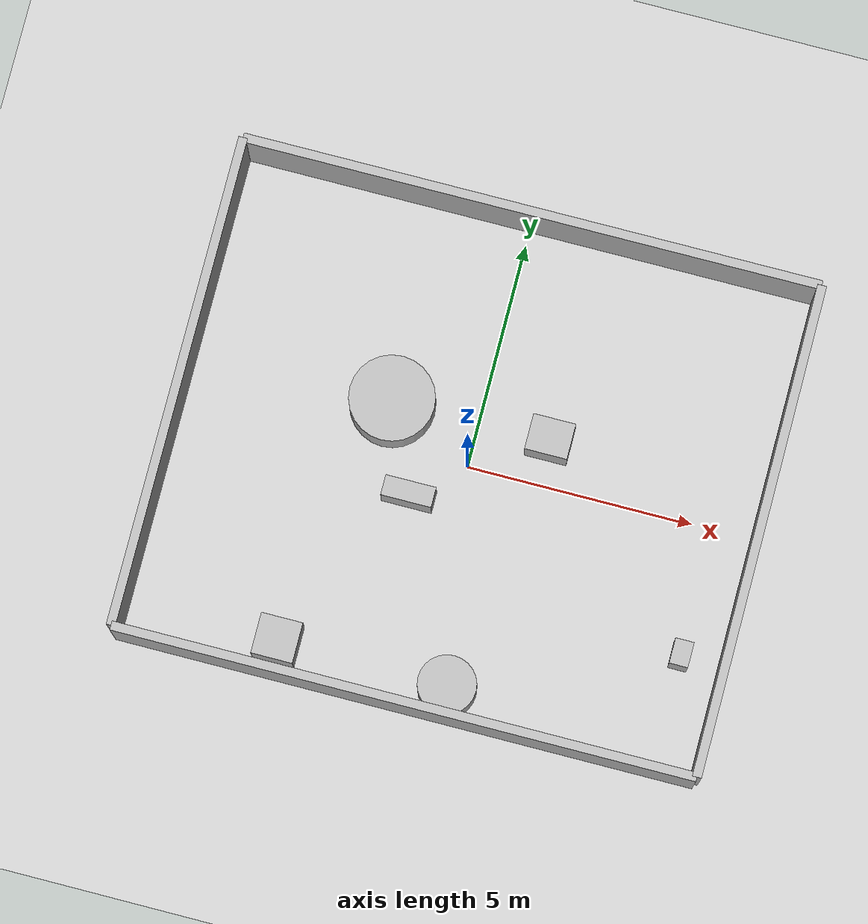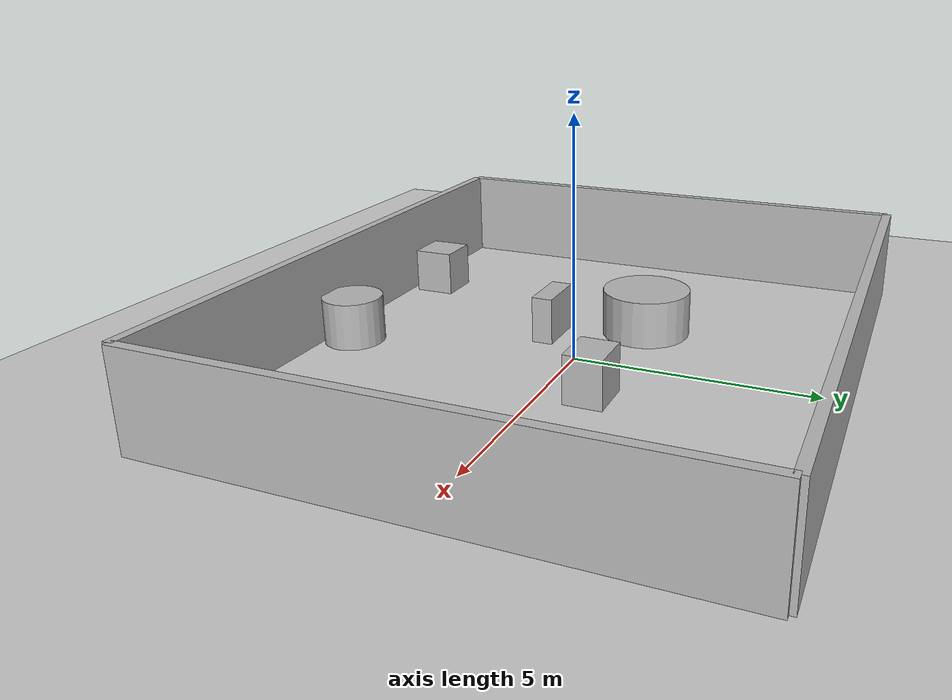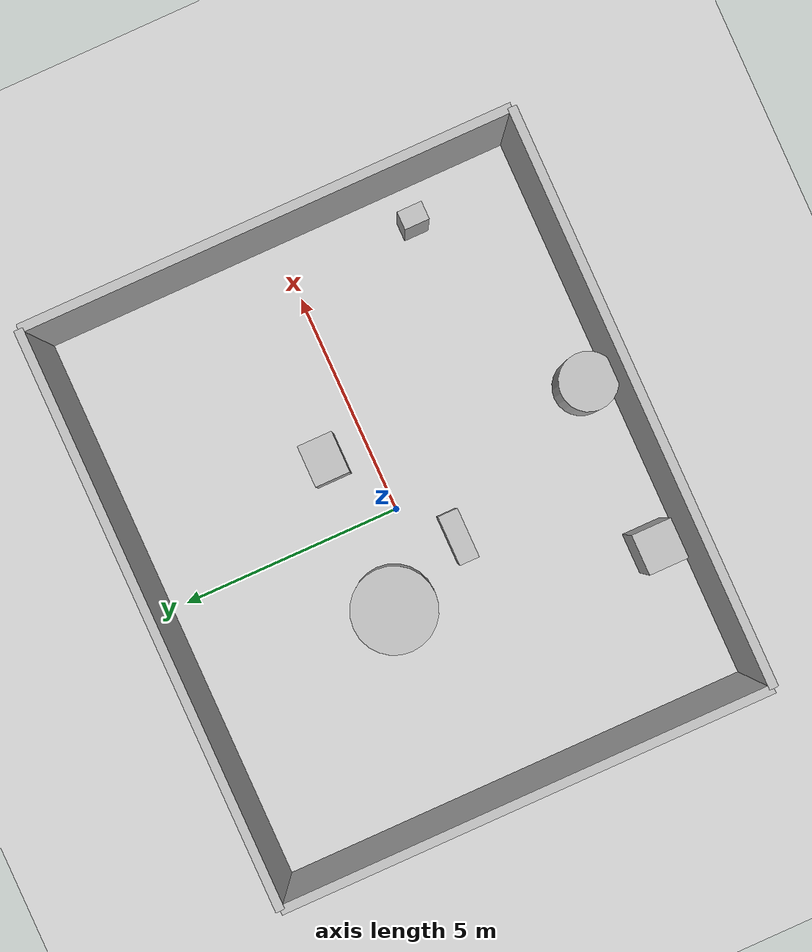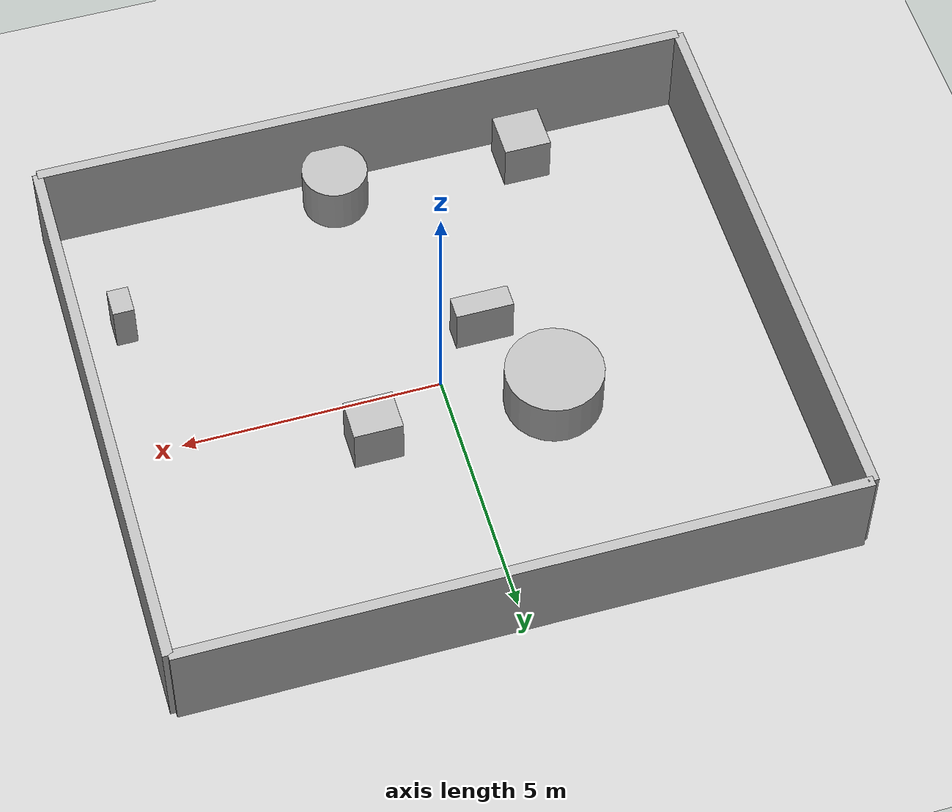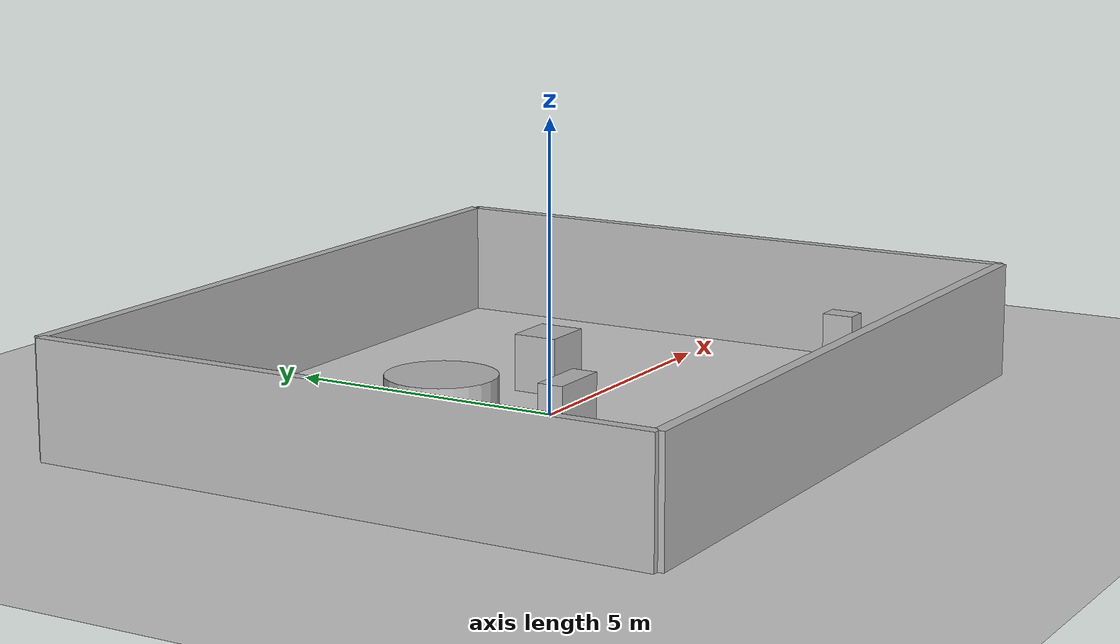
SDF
<?xml version="1.0"?>
<sdf version="1.6">
  <world name="env_4">

    <include><uri>model://ground_plane</uri></include>
    <include><uri>model://sun</uri></include>

    <!-- WALLS -->
    <model name="wall_north"><static>true</static><pose>0 5.43466096720149 1 0 0 0</pose>
      <link name="link"><collision name="collision">
        <geometry><box><size>12.79911356168209 0.2 2</size></box></geometry>
      </collision><visual name="visual">
        <geometry><box><size>12.79911356168209 0.2 2</size></box></geometry>
      </visual></link>
    </model>

    <model name="wall_south"><static>true</static><pose>0 -5.43466096720149 1 0 0 0</pose>
      <link name="link"><collision name="collision">
        <geometry><box><size>12.79911356168209 0.2 2</size></box></geometry>
      </collision><visual name="visual">
        <geometry><box><size>12.79911356168209 0.2 2</size></box></geometry>
      </visual></link>
    </model>

    <model name="wall_east"><static>true</static><pose>6.399556780841045 0 1 0 0 1.57</pose>
      <link name="link"><collision name="collision">
        <geometry><box><size>10.86932193440298 0.2 2</size></box></geometry>
      </collision><visual name="visual">
        <geometry><box><size>10.86932193440298 0.2 2</size></box></geometry>
      </visual></link>
    </model>

    <model name="wall_west"><static>true</static><pose>-6.399556780841045 0 1 0 0 1.57</pose>
      <link name="link"><collision name="collision">
        <geometry><box><size>10.86932193440298 0.2 2</size></box></geometry>
      </collision><visual name="visual">
        <geometry><box><size>10.86932193440298 0.2 2</size></box></geometry>
      </visual></link>
    </model>

    <!-- SENSOR -->

    <model name="lidar_sensor">
      <static>true</static>
      <pose>-5.816185072089519 -3.968462269676454 0.4 0 0 0</pose>
      <link name="link">
        <sensor name="lidar" type="ray">
          <pose>0 0 0 0 0 0</pose>
          <visualize>true</visualize>
          <always_on>true</always_on>
          <update_rate>10</update_rate>
          <ray>
            <scan><horizontal>
              <samples>90</samples>
              <resolution>1</resolution>
              <min_angle>-3.14159</min_angle>
              <max_angle>3.14159</max_angle>
            </horizontal></scan>
            <range><min>0.15</min><max>20.0</max><resolution>0.01</resolution></range>
          </ray>
          <plugin name="lidar_plugin" filename="liblidar_plugin.so"/>
        </sensor>
      </link>
    </model>

    <!-- OBSTACLES -->

    <model name="obstacle_0">
      <static>true</static>
      <pose>0.774211852569298 -4.772158143055009 0.5 0 0 0</pose>
      <link name="link">
        <collision name="collision">
          <geometry><cylinder><radius>0.64</radius><length>1.0</length></cylinder></geometry>
        </collision>
        <visual name="visual">
          <geometry><cylinder><radius>0.64</radius><length>1.0</length></cylinder></geometry>
        </visual>
      </link>
    </model>

    <model name="obstacle_1">
      <static>true</static>
      <pose>1.5732595115477777 0.9594140707238799 0.5 0 0 0</pose>
      <link name="link">
        <collision name="collision">
          <geometry><box><size>0.94 0.79 1.0</size></box></geometry>
        </collision>
        <visual name="visual">
          <geometry><box><size>0.94 0.79 1.0</size></box></geometry>
        </visual>
      </link>
    </model>

    <model name="obstacle_2">
      <static>true</static>
      <pose>5.453478919825197 -2.85194531966158 0.5 0 0 0</pose>
      <link name="link">
        <collision name="collision">
          <geometry><box><size>0.41 0.56 1.0</size></box></geometry>
        </collision>
        <visual name="visual">
          <geometry><box><size>0.41 0.56 1.0</size></box></geometry>
        </visual>
      </link>
    </model>

    <model name="obstacle_3">
      <static>true</static>
      <pose>-2.994976134569548 -4.716353983559406 0.5 0 0 0</pose>
      <link name="link">
        <collision name="collision">
          <geometry><box><size>0.92 0.9 1.0</size></box></geometry>
        </collision>
        <visual name="visual">
          <geometry><box><size>0.92 0.9 1.0</size></box></geometry>
        </visual>
      </link>
    </model>

    <model name="obstacle_4">
      <static>true</static>
      <pose>-1.0742542789654417 -0.951071306755352 0.5 0 0 0</pose>
      <link name="link">
        <collision name="collision">
          <geometry><box><size>1.12 0.45 1.0</size></box></geometry>
        </collision>
        <visual name="visual">
          <geometry><box><size>1.12 0.45 1.0</size></box></geometry>
        </visual>
      </link>
    </model>

    <model name="obstacle_5">
      <static>true</static>
      <pose>-1.9267611119532537 0.9114822197899537 0.5 0 0 0</pose>
      <link name="link">
        <collision name="collision">
          <geometry><cylinder><radius>0.94</radius><length>1.0</length></cylinder></geometry>
        </collision>
        <visual name="visual">
          <geometry><cylinder><radius>0.94</radius><length>1.0</length></cylinder></geometry>
        </visual>
      </link>
    </model>

  </world>
</sdf>
